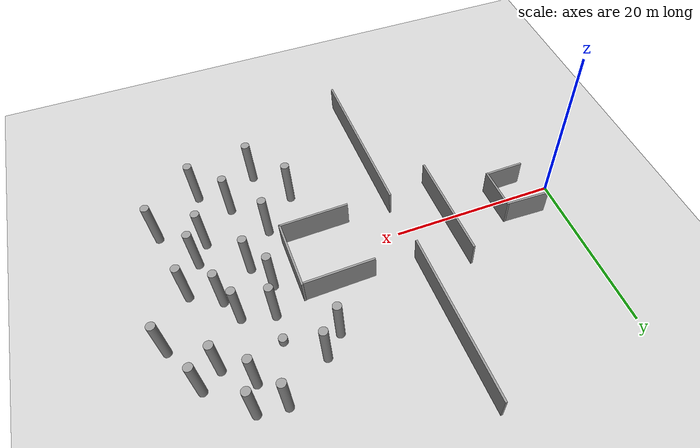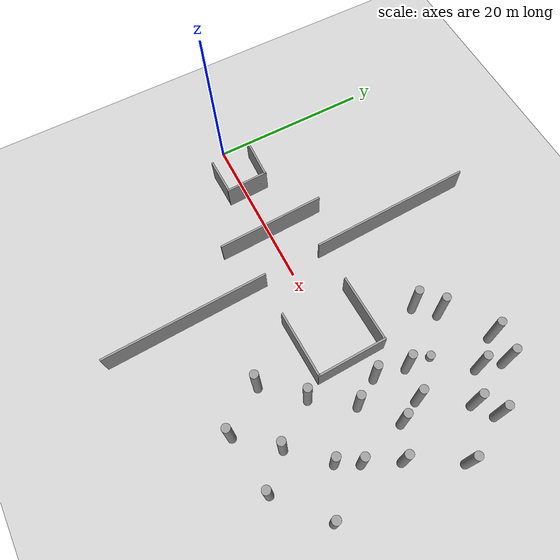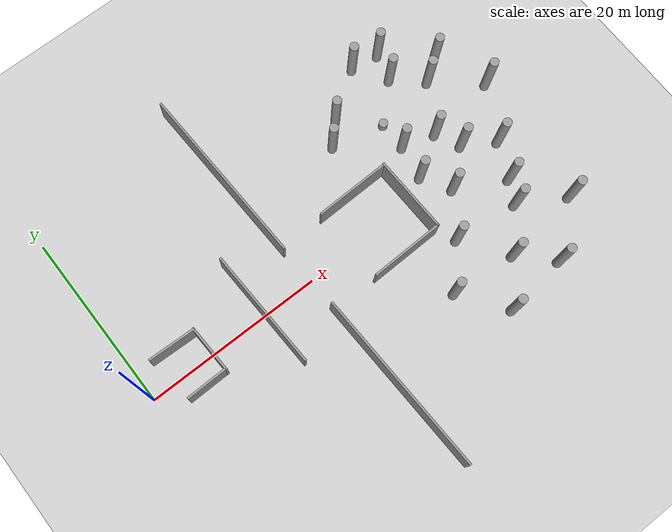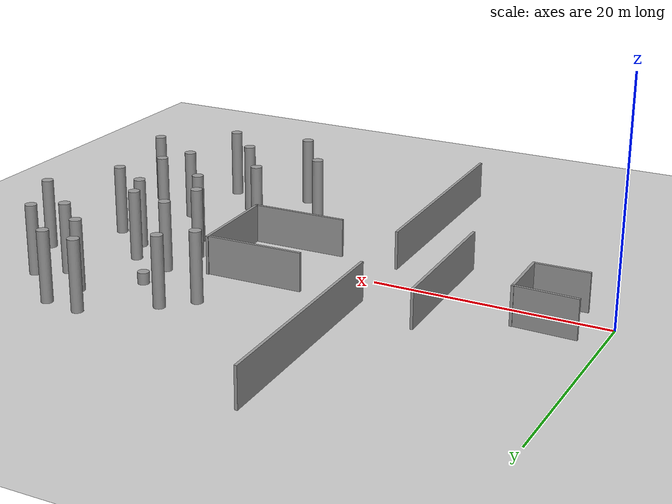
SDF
<sdf version="1.6">
 <world name="default">
  <light name="sun" type="directional">
   <cast_shadows>0</cast_shadows>
   <pose>0 0 10 0 -0 0</pose>
   <diffuse>0.8 0.8 0.8 1</diffuse>
   <specular>0.2 0.2 0.2 1</specular>
   <attenuation>
    <range>1000</range>
    <constant>0.9</constant>
    <linear>0.01</linear>
    <quadratic>0.001</quadratic>
   </attenuation>
   <direction>-0.5 0.1 -0.9</direction>
  </light>
  <model name="ground_plane">
   <static>1</static>
   <link name="link">
    <collision name="collision">
     <geometry><plane><normal>0 0 1</normal><size>200 200</size></plane></geometry>
     <surface><friction><ode><mu>100</mu><mu2>50</mu2></ode></friction></surface>
    </collision>
    <visual name="visual">
     <cast_shadows>0</cast_shadows>
     <geometry><plane><normal>0 0 1</normal><size>200 200</size></plane></geometry>
     <material>
      <script><uri>file://media/materials/scripts/gazebo.material</uri><name>Gazebo/Grey</name></script>
     </material>
    </visual>
    <gravity>0</gravity>
   </link>
  </model>
  <physics name="default_physics" default="0" type="ode">
   <max_step_size>0.001</max_step_size>
   <real_time_factor>1</real_time_factor>
   <real_time_update_rate>1000</real_time_update_rate>
  </physics>
  <scene><ambient>0.4 0.4 0.4 1</ambient><background>0.7 0.7 0.7 1</background><shadows>0</shadows></scene>
  <spherical_coordinates>
   <surface_model>EARTH_WGS84</surface_model>
   <latitude_deg>0</latitude_deg>
   <longitude_deg>0</longitude_deg>
   <elevation>0</elevation>
   <heading_deg>0</heading_deg>
  </spherical_coordinates>
  <gravity>0 0 0</gravity>
  <magnetic_field>6e-06 2.3e-05 -4.2e-05</magnetic_field>
  <atmosphere type="adiabatic"/>
  <model name="unit_box_0_0_clone">
   <pose>4.66061 2.81844 1.66658 0.000226 9e-06 -1.60347</pose>
   <link name="link">
    <inertial>
     <mass>1</mass>
     <inertia>
      <ixx>0.166667</ixx>
      <ixy>0</ixy>
      <ixz>0</ixz>
      <iyy>0.166667</iyy>
      <iyz>0</iyz>
      <izz>0.166667</izz>
     </inertia>
    </inertial>
    <collision name="collision">
     <geometry><box><size>0.237691 5.35848 3.33454</size></box></geometry>
     <surface><contact><collide_without_contact>1</collide_without_contact></contact></surface>
    </collision>
    <visual name="visual">
     <geometry><box><size>0.237691 5.35848 3.33454</size></box></geometry>
     <material>
      <script><name>Gazebo/Grey</name><uri>file://media/materials/scripts/gazebo.material</uri></script>
     </material>
    </visual>
    <gravity>0</gravity>
   </link>
  </model>
  <model name="unit_box_0_0_clone_clone">
   <pose>5.08392 -2.35813 1.66712 6.7e-05 -3e-06 -1.55426</pose>
   <link name="link">
    <inertial>
     <mass>1</mass>
     <inertia>
      <ixx>0.166667</ixx>
      <ixy>0</ixy>
      <ixz>0</ixz>
      <iyy>0.166667</iyy>
      <iyz>0</iyz>
      <izz>0.166667</izz>
     </inertia>
    </inertial>
    <collision name="collision">
     <geometry><box><size>0.237691 4.56821 3.33454</size></box></geometry>
     <surface><contact><collide_without_contact>1</collide_without_contact></contact></surface>
    </collision>
    <visual name="visual">
     <geometry><box><size>0.237691 4.56821 3.33454</size></box></geometry>
     <material>
      <script><name>Gazebo/Grey</name><uri>file://media/materials/scripts/gazebo.material</uri></script>
     </material>
    </visual>
    <gravity>0</gravity>
   </link>
  </model>
  <model name="unit_box_0_0_clone_0">
   <pose>13.856 0.243042 1.66667 -0.000226 9e-06 0.034068</pose>
   <link name="link">
    <inertial>
     <mass>1</mass>
     <inertia>
      <ixx>0.166667</ixx>
      <ixy>0</ixy>
      <ixz>0</ixz>
      <iyy>0.166667</iyy>
      <iyz>0</iyz>
      <izz>0.166667</izz>
     </inertia>
    </inertial>
    <collision name="collision">
     <geometry><box><size>0.237691 13.4329 3.33454</size></box></geometry>
     <surface><contact><collide_without_contact>1</collide_without_contact></contact></surface>
    </collision>
    <visual name="visual">
     <geometry><box><size>0.237691 13.4329 3.33454</size></box></geometry>
     <material>
      <script><name>Gazebo/Grey</name><uri>file://media/materials/scripts/gazebo.material</uri></script>
     </material>
    </visual>
    <gravity>0</gravity>
   </link>
  </model>
  <model name="unit_cylinder_0">
   <pose>36.5123 8.86063 0.499992 0 -0 0</pose>
   <link name="link">
    <inertial>
     <mass>1</mass>
     <inertia><ixx>0.145833</ixx><ixy>0</ixy><ixz>0</ixz><iyy>0.145833</iyy><iyz>0</iyz><izz>0.125</izz></inertia>
    </inertial>
    <collision name="collision">
     <geometry><cylinder><radius>0.5</radius><length>1</length></cylinder></geometry>
     <surface><contact><collide_without_contact>1</collide_without_contact></contact></surface>
    </collision>
    <visual name="visual">
     <geometry><cylinder><radius>0.5</radius><length>1</length></cylinder></geometry>
     <material>
      <script><name>Gazebo/Grey</name><uri>file://media/materials/scripts/gazebo.material</uri></script>
     </material>
    </visual>
    <gravity>0</gravity>
   </link>
  </model>
  <model name="unit_cylinder_0_clone">
   <pose>35.7138 1.81409 3.0167 0 -0 0.001048</pose>
   <link name="link">
    <inertial>
     <mass>1</mass>
     <inertia><ixx>0.145833</ixx><ixy>0</ixy><ixz>0</ixz><iyy>0.145833</iyy><iyz>0</iyz><izz>0.125</izz></inertia>
    </inertial>
    <collision name="collision">
     <geometry><cylinder><radius>0.5</radius><length>6.03342</length></cylinder></geometry>
     <surface><contact><collide_without_contact>1</collide_without_contact></contact></surface>
    </collision>
    <visual name="visual">
     <geometry><cylinder><radius>0.5</radius><length>6.03342</length></cylinder></geometry>
     <material>
      <script><name>Gazebo/Grey</name><uri>file://media/materials/scripts/gazebo.material</uri></script>
     </material>
    </visual>
    <gravity>0</gravity>
   </link>
  </model>
  <model name="unit_cylinder_0_clone_0">
   <pose>34.333 -5.78751 3.0167 0 -0 0.00102</pose>
   <link name="link">
    <inertial>
     <mass>1</mass>
     <inertia><ixx>0.145833</ixx><ixy>0</ixy><ixz>0</ixz><iyy>0.145833</iyy><iyz>0</iyz><izz>0.125</izz></inertia>
    </inertial>
    <collision name="collision">
     <geometry><cylinder><radius>0.5</radius><length>6.03342</length></cylinder></geometry>
     <surface><contact><collide_without_contact>1</collide_without_contact></contact></surface>
    </collision>
    <visual name="visual">
     <geometry><cylinder><radius>0.5</radius><length>6.03342</length></cylinder></geometry>
     <material>
      <script><name>Gazebo/Grey</name><uri>file://media/materials/scripts/gazebo.material</uri></script>
     </material>
    </visual>
    <gravity>0</gravity>
   </link>
  </model>
  <model name="unit_cylinder_0_clone_1">
   <pose>36.4256 5.60163 3.0167 0 -0 0.001071</pose>
   <link name="link">
    <inertial>
     <mass>1</mass>
     <inertia><ixx>0.145833</ixx><ixy>0</ixy><ixz>0</ixz><iyy>0.145833</iyy><iyz>0</iyz><izz>0.125</izz></inertia>
    </inertial>
    <collision name="collision">
     <geometry><cylinder><radius>0.5</radius><length>6.03342</length></cylinder></geometry>
     <surface><contact><collide_without_contact>1</collide_without_contact></contact></surface>
    </collision>
    <visual name="visual">
     <geometry><cylinder><radius>0.5</radius><length>6.03342</length></cylinder></geometry>
     <material>
      <script><name>Gazebo/Grey</name><uri>file://media/materials/scripts/gazebo.material</uri></script>
     </material>
    </visual>
    <gravity>0</gravity>
   </link>
  </model>
  <model name="unit_cylinder_0_clone_2">
   <pose>40.095 4.60307 3.0167 0 -0 0.00102</pose>
   <link name="link">
    <inertial>
     <mass>1</mass>
     <inertia><ixx>0.145833</ixx><ixy>0</ixy><ixz>0</ixz><iyy>0.145833</iyy><iyz>0</iyz><izz>0.125</izz></inertia>
    </inertial>
    <collision name="collision">
     <geometry><cylinder><radius>0.5</radius><length>6.03342</length></cylinder></geometry>
     <surface><contact><collide_without_contact>1</collide_without_contact></contact></surface>
    </collision>
    <visual name="visual">
     <geometry><cylinder><radius>0.5</radius><length>6.03342</length></cylinder></geometry>
     <material>
      <script><name>Gazebo/Grey</name><uri>file://media/materials/scripts/gazebo.material</uri></script>
     </material>
    </visual>
    <gravity>0</gravity>
   </link>
  </model>
  <model name="unit_cylinder_0_clone_3">
   <pose>43.012 -4.07604 3.0167 0 -0 0.001061</pose>
   <link name="link">
    <inertial>
     <mass>1</mass>
     <inertia><ixx>0.145833</ixx><ixy>0</ixy><ixz>0</ixz><iyy>0.145833</iyy><iyz>0</iyz><izz>0.125</izz></inertia>
    </inertial>
    <collision name="collision">
     <geometry><cylinder><radius>0.5</radius><length>6.03342</length></cylinder></geometry>
     <surface><contact><collide_without_contact>1</collide_without_contact></contact></surface>
    </collision>
    <visual name="visual">
     <geometry><cylinder><radius>0.5</radius><length>6.03342</length></cylinder></geometry>
     <material>
      <script><name>Gazebo/Grey</name><uri>file://media/materials/scripts/gazebo.material</uri></script>
     </material>
    </visual>
    <gravity>0</gravity>
   </link>
  </model>
  <model name="unit_cylinder_0_clone_4">
   <pose>44.8772 -0.138691 3.01671 0 -0 0.001001</pose>
   <link name="link">
    <inertial>
     <mass>1</mass>
     <inertia><ixx>0.145833</ixx><ixy>0</ixy><ixz>0</ixz><iyy>0.145833</iyy><iyz>0</iyz><izz>0.125</izz></inertia>
    </inertial>
    <collision name="collision">
     <geometry><cylinder><radius>0.5</radius><length>6.03342</length></cylinder></geometry>
     <surface><contact><collide_without_contact>1</collide_without_contact></contact></surface>
    </collision>
    <visual name="visual">
     <geometry><cylinder><radius>0.5</radius><length>6.03342</length></cylinder></geometry>
     <material>
      <script><name>Gazebo/Grey</name><uri>file://media/materials/scripts/gazebo.material</uri></script>
     </material>
    </visual>
    <gravity>0</gravity>
   </link>
  </model>
  <model name="unit_cylinder_0_clone_5">
   <pose>41.4105 1.88991 3.0167 0 -0 0.000951</pose>
   <link name="link">
    <inertial>
     <mass>1</mass>
     <inertia><ixx>0.145833</ixx><ixy>0</ixy><ixz>0</ixz><iyy>0.145833</iyy><iyz>0</iyz><izz>0.125</izz></inertia>
    </inertial>
    <collision name="collision">
     <geometry><cylinder><radius>0.5</radius><length>6.03342</length></cylinder></geometry>
     <surface><contact><collide_without_contact>1</collide_without_contact></contact></surface>
    </collision>
    <visual name="visual">
     <geometry><cylinder><radius>0.5</radius><length>6.03342</length></cylinder></geometry>
     <material>
      <script><name>Gazebo/Grey</name><uri>file://media/materials/scripts/gazebo.material</uri></script>
     </material>
    </visual>
    <gravity>0</gravity>
   </link>
  </model>
  <model name="unit_cylinder_0_clone_6">
   <pose>41.6643 -6.5691 3.0167 0 -0 0.00102</pose>
   <link name="link">
    <inertial>
     <mass>1</mass>
     <inertia><ixx>0.145833</ixx><ixy>0</ixy><ixz>0</ixz><iyy>0.145833</iyy><iyz>0</iyz><izz>0.125</izz></inertia>
    </inertial>
    <collision name="collision">
     <geometry><cylinder><radius>0.5</radius><length>6.03342</length></cylinder></geometry>
     <surface><contact><collide_without_contact>1</collide_without_contact></contact></surface>
    </collision>
    <visual name="visual">
     <geometry><cylinder><radius>0.5</radius><length>6.03342</length></cylinder></geometry>
     <material>
      <script><name>Gazebo/Grey</name><uri>file://media/materials/scripts/gazebo.material</uri></script>
     </material>
    </visual>
    <gravity>0</gravity>
   </link>
  </model>
  <model name="unit_cylinder_0_clone_7">
   <pose>37.572 -1.32122 3.0167 0 -0 0.001017</pose>
   <link name="link">
    <inertial>
     <mass>1</mass>
     <inertia><ixx>0.145833</ixx><ixy>0</ixy><ixz>0</ixz><iyy>0.145833</iyy><iyz>0</iyz><izz>0.125</izz></inertia>
    </inertial>
    <collision name="collision">
     <geometry><cylinder><radius>0.5</radius><length>6.03342</length></cylinder></geometry>
     <surface><contact><collide_without_contact>1</collide_without_contact></contact></surface>
    </collision>
    <visual name="visual">
     <geometry><cylinder><radius>0.5</radius><length>6.03342</length></cylinder></geometry>
     <material>
      <script><name>Gazebo/Grey</name><uri>file://media/materials/scripts/gazebo.material</uri></script>
     </material>
    </visual>
    <gravity>0</gravity>
   </link>
  </model>
  <model name="unit_cylinder_0_clone_8">
   <pose>45.5641 11.3365 3.0167 0 -0 0.001111</pose>
   <link name="link">
    <inertial>
     <mass>1</mass>
     <inertia><ixx>0.145833</ixx><ixy>0</ixy><ixz>0</ixz><iyy>0.145833</iyy><iyz>0</iyz><izz>0.125</izz></inertia>
    </inertial>
    <collision name="collision">
     <geometry><cylinder><radius>0.5</radius><length>6.03342</length></cylinder></geometry>
     <surface><contact><collide_without_contact>1</collide_without_contact></contact></surface>
    </collision>
    <visual name="visual">
     <geometry><cylinder><radius>0.5</radius><length>6.03342</length></cylinder></geometry>
     <material>
      <script><name>Gazebo/Grey</name><uri>file://media/materials/scripts/gazebo.material</uri></script>
     </material>
    </visual>
    <gravity>0</gravity>
   </link>
  </model>
  <model name="unit_cylinder_0_clone_9">
   <pose>43.3588 9.77114 3.01671 0 -0 0.001025</pose>
   <link name="link">
    <inertial>
     <mass>1</mass>
     <inertia><ixx>0.145833</ixx><ixy>0</ixy><ixz>0</ixz><iyy>0.145833</iyy><iyz>0</iyz><izz>0.125</izz></inertia>
    </inertial>
    <collision name="collision">
     <geometry><cylinder><radius>0.5</radius><length>6.03342</length></cylinder></geometry>
     <surface><contact><collide_without_contact>1</collide_without_contact></contact></surface>
    </collision>
    <visual name="visual">
     <geometry><cylinder><radius>0.5</radius><length>6.03342</length></cylinder></geometry>
     <material>
      <script><name>Gazebo/Grey</name><uri>file://media/materials/scripts/gazebo.material</uri></script>
     </material>
    </visual>
    <gravity>0</gravity>
   </link>
  </model>
  <model name="unit_cylinder_0_clone_10">
   <pose>48.21 5.73589 3.0167 0 -0 0.000963</pose>
   <link name="link">
    <inertial>
     <mass>1</mass>
     <inertia><ixx>0.145833</ixx><ixy>0</ixy><ixz>0</ixz><iyy>0.145833</iyy><iyz>0</iyz><izz>0.125</izz></inertia>
    </inertial>
    <collision name="collision">
     <geometry><cylinder><radius>0.5</radius><length>6.03342</length></cylinder></geometry>
     <surface><contact><collide_without_contact>1</collide_without_contact></contact></surface>
    </collision>
    <visual name="visual">
     <geometry><cylinder><radius>0.5</radius><length>6.03342</length></cylinder></geometry>
     <material>
      <script><name>Gazebo/Grey</name><uri>file://media/materials/scripts/gazebo.material</uri></script>
     </material>
    </visual>
    <gravity>0</gravity>
   </link>
  </model>
  <model name="unit_cylinder_0_clone_11">
   <pose>37.8194 -10.6225 3.0167 0 -0 0.000949</pose>
   <link name="link">
    <inertial>
     <mass>1</mass>
     <inertia><ixx>0.145833</ixx><ixy>0</ixy><ixz>0</ixz><iyy>0.145833</iyy><iyz>0</iyz><izz>0.125</izz></inertia>
    </inertial>
    <collision name="collision">
     <geometry><cylinder><radius>0.5</radius><length>6.03342</length></cylinder></geometry>
     <surface><contact><collide_without_contact>1</collide_without_contact></contact></surface>
    </collision>
    <visual name="visual">
     <geometry><cylinder><radius>0.5</radius><length>6.03342</length></cylinder></geometry>
     <material>
      <script><name>Gazebo/Grey</name><uri>file://media/materials/scripts/gazebo.material</uri></script>
     </material>
    </visual>
    <gravity>0</gravity>
   </link>
  </model>
  <model name="unit_cylinder_0_clone_12">
   <pose>32.6996 12.3147 3.0167 0 -0 0.000949</pose>
   <link name="link">
    <inertial>
     <mass>1</mass>
     <inertia><ixx>0.145833</ixx><ixy>0</ixy><ixz>0</ixz><iyy>0.145833</iyy><iyz>0</iyz><izz>0.125</izz></inertia>
    </inertial>
    <collision name="collision">
     <geometry><cylinder><radius>0.5</radius><length>6.03342</length></cylinder></geometry>
     <surface><contact><collide_without_contact>1</collide_without_contact></contact></surface>
    </collision>
    <visual name="visual">
     <geometry><cylinder><radius>0.5</radius><length>6.03342</length></cylinder></geometry>
     <material>
      <script><name>Gazebo/Grey</name><uri>file://media/materials/scripts/gazebo.material</uri></script>
     </material>
    </visual>
    <gravity>0</gravity>
   </link>
  </model>
  <model name="unit_cylinder_0_clone_13">
   <pose>30.5886 10.1395 3.0167 0 -0 0.000936</pose>
   <link name="link">
    <inertial>
     <mass>1</mass>
     <inertia><ixx>0.145833</ixx><ixy>0</ixy><ixz>0</ixz><iyy>0.145833</iyy><iyz>0</iyz><izz>0.125</izz></inertia>
    </inertial>
    <collision name="collision">
     <geometry><cylinder><radius>0.5</radius><length>6.03342</length></cylinder></geometry>
     <surface><contact><collide_without_contact>1</collide_without_contact></contact></surface>
    </collision>
    <visual name="visual">
     <geometry><cylinder><radius>0.5</radius><length>6.03342</length></cylinder></geometry>
     <material>
      <script><name>Gazebo/Grey</name><uri>file://media/materials/scripts/gazebo.material</uri></script>
     </material>
    </visual>
    <gravity>0</gravity>
   </link>
  </model>
  <model name="unit_cylinder_0_clone_14">
   <pose>30.4731 -9.99792 3.01671 0 -0 0.001073</pose>
   <link name="link">
    <inertial>
     <mass>1</mass>
     <inertia><ixx>0.145833</ixx><ixy>0</ixy><ixz>0</ixz><iyy>0.145833</iyy><iyz>0</iyz><izz>0.125</izz></inertia>
    </inertial>
    <collision name="collision">
     <geometry><cylinder><radius>0.5</radius><length>6.03342</length></cylinder></geometry>
     <surface><contact><collide_without_contact>1</collide_without_contact></contact></surface>
    </collision>
    <visual name="visual">
     <geometry><cylinder><radius>0.5</radius><length>6.03342</length></cylinder></geometry>
     <material>
      <script><name>Gazebo/Grey</name><uri>file://media/materials/scripts/gazebo.material</uri></script>
     </material>
    </visual>
    <gravity>0</gravity>
   </link>
  </model>
  <model name="unit_cylinder_0_clone_15">
   <pose>46.7351 -9.39948 3.01671 0 -0 0.001025</pose>
   <link name="link">
    <inertial>
     <mass>1</mass>
     <inertia><ixx>0.145833</ixx><ixy>0</ixy><ixz>0</ixz><iyy>0.145833</iyy><iyz>0</iyz><izz>0.125</izz></inertia>
    </inertial>
    <collision name="collision">
     <geometry><cylinder><radius>0.5</radius><length>6.03342</length></cylinder></geometry>
     <surface><contact><collide_without_contact>1</collide_without_contact></contact></surface>
    </collision>
    <visual name="visual">
     <geometry><cylinder><radius>0.5</radius><length>6.03342</length></cylinder></geometry>
     <material>
      <script><name>Gazebo/Grey</name><uri>file://media/materials/scripts/gazebo.material</uri></script>
     </material>
    </visual>
    <gravity>0</gravity>
   </link>
  </model>
  <model name="unit_cylinder_0_clone_16">
   <pose>37.8551 15.9705 3.0167 0 -0 0.000998</pose>
   <link name="link">
    <inertial>
     <mass>1</mass>
     <inertia><ixx>0.145833</ixx><ixy>0</ixy><ixz>0</ixz><iyy>0.145833</iyy><iyz>0</iyz><izz>0.125</izz></inertia>
    </inertial>
    <collision name="collision">
     <geometry><cylinder><radius>0.5</radius><length>6.03342</length></cylinder></geometry>
     <surface><contact><collide_without_contact>1</collide_without_contact></contact></surface>
    </collision>
    <visual name="visual">
     <geometry><cylinder><radius>0.5</radius><length>6.03342</length></cylinder></geometry>
     <material>
      <script><name>Gazebo/Grey</name><uri>file://media/materials/scripts/gazebo.material</uri></script>
     </material>
    </visual>
    <gravity>0</gravity>
   </link>
  </model>
  <model name="unit_cylinder_0_clone_17">
   <pose>41.0774 15.5736 3.0167 0 -0 0.001062</pose>
   <link name="link">
    <inertial>
     <mass>1</mass>
     <inertia><ixx>0.145833</ixx><ixy>0</ixy><ixz>0</ixz><iyy>0.145833</iyy><iyz>0</iyz><izz>0.125</izz></inertia>
    </inertial>
    <collision name="collision">
     <geometry><cylinder><radius>0.5</radius><length>6.03342</length></cylinder></geometry>
     <surface><contact><collide_without_contact>1</collide_without_contact></contact></surface>
    </collision>
    <visual name="visual">
     <geometry><cylinder><radius>0.5</radius><length>6.03342</length></cylinder></geometry>
     <material>
      <script><name>Gazebo/Grey</name><uri>file://media/materials/scripts/gazebo.material</uri></script>
     </material>
    </visual>
    <gravity>0</gravity>
   </link>
  </model>
  <model name="unit_cylinder_0_clone_18">
   <pose>34.0571 -14.8992 3.01671 0 -0 0.001025</pose>
   <link name="link">
    <inertial>
     <mass>1</mass>
     <inertia><ixx>0.145833</ixx><ixy>0</ixy><ixz>0</ixz><iyy>0.145833</iyy><iyz>0</iyz><izz>0.125</izz></inertia>
    </inertial>
    <collision name="collision">
     <geometry><cylinder><radius>0.5</radius><length>6.03342</length></cylinder></geometry>
     <surface><contact><collide_without_contact>1</collide_without_contact></contact></surface>
    </collision>
    <visual name="visual">
     <geometry><cylinder><radius>0.5</radius><length>6.03342</length></cylinder></geometry>
     <material>
      <script><name>Gazebo/Grey</name><uri>file://media/materials/scripts/gazebo.material</uri></script>
     </material>
    </visual>
    <gravity>0</gravity>
   </link>
  </model>
  <model name="unit_cylinder_0_clone_19">
   <pose>41.1999 -13.9942 3.0167 0 -0 0.00106</pose>
   <link name="link">
    <inertial>
     <mass>1</mass>
     <inertia><ixx>0.145833</ixx><ixy>0</ixy><ixz>0</ixz><iyy>0.145833</iyy><iyz>0</iyz><izz>0.125</izz></inertia>
    </inertial>
    <collision name="collision">
     <geometry><cylinder><radius>0.5</radius><length>6.03342</length></cylinder></geometry>
     <surface><contact><collide_without_contact>1</collide_without_contact></contact></surface>
    </collision>
    <visual name="visual">
     <geometry><cylinder><radius>0.5</radius><length>6.03342</length></cylinder></geometry>
     <material>
      <script><name>Gazebo/Grey</name><uri>file://media/materials/scripts/gazebo.material</uri></script>
     </material>
    </visual>
    <gravity>0</gravity>
   </link>
  </model>
  <model name="unit_cylinder_0_clone_20">
   <pose>40.2463 12.4856 3.0167 0 -0 0.000949</pose>
   <link name="link">
    <inertial>
     <mass>1</mass>
     <inertia><ixx>0.145833</ixx><ixy>0</ixy><ixz>0</ixz><iyy>0.145833</iyy><iyz>0</iyz><izz>0.125</izz></inertia>
    </inertial>
    <collision name="collision">
     <geometry><cylinder><radius>0.5</radius><length>6.03342</length></cylinder></geometry>
     <surface><contact><collide_without_contact>1</collide_without_contact></contact></surface>
    </collision>
    <visual name="visual">
     <geometry><cylinder><radius>0.5</radius><length>6.03342</length></cylinder></geometry>
     <material>
      <script><name>Gazebo/Grey</name><uri>file://media/materials/scripts/gazebo.material</uri></script>
     </material>
    </visual>
    <gravity>0</gravity>
   </link>
  </model>
  <model name="unit_box_0_0_clone_0_clone_0_clone">
   <pose>33.0465 0.477907 1.65585 -0.002643 6.7e-05 0.02542</pose>
   <link name="link">
    <inertial>
     <mass>1</mass>
     <inertia>
      <ixx>0.166667</ixx>
      <ixy>0</ixy>
      <ixz>0</ixz>
      <iyy>0.166667</iyy>
      <iyz>0</iyz>
      <izz>0.166667</izz>
     </inertia>
    </inertial>
    <collision name="collision">
     <geometry><box><size>0.237691 8.66981 3.33454</size></box></geometry>
     <surface><contact><collide_without_contact>1</collide_without_contact></contact></surface>
    </collision>
    <visual name="visual">
     <geometry><box><size>0.237691 8.66981 3.33454</size></box></geometry>
     <material>
      <script><name>Gazebo/Grey</name><uri>file://media/materials/scripts/gazebo.material</uri></script>
     </material>
    </visual>
    <gravity>0</gravity>
   </link>
  </model>
  <model name="unit_box_0_0_clone_clone_clone_0">
   <pose>28.6414 4.52518 1.65786 0.002259 -6e-05 -1.54452</pose>
   <link name="link">
    <inertial>
     <mass>1</mass>
     <inertia>
      <ixx>0.166667</ixx>
      <ixy>0</ixy>
      <ixz>0</ixz>
      <iyy>0.166667</iyy>
      <iyz>0</iyz>
      <izz>0.166667</izz>
     </inertia>
    </inertial>
    <collision name="collision">
     <geometry><box><size>0.237691 8.358 3.33454</size></box></geometry>
     <surface><contact><collide_without_contact>1</collide_without_contact></contact></surface>
    </collision>
    <visual name="visual">
     <geometry><box><size>0.237691 8.358 3.33454</size></box></geometry>
     <material>
      <script><name>Gazebo/Grey</name><uri>file://media/materials/scripts/gazebo.material</uri></script>
     </material>
    </visual>
    <gravity>0</gravity>
   </link>
  </model>
  <model name="unit_box_0_0_clone_0_clone">
   <pose>18.9776 14.0221 1.66667 -0.000226 9e-06 0.034061</pose>
   <link name="link">
    <inertial>
     <mass>1</mass>
     <inertia>
      <ixx>0.166667</ixx>
      <ixy>0</ixy>
      <ixz>0</ixz>
      <iyy>0.166667</iyy>
      <iyz>0</iyz>
      <izz>0.166667</izz>
     </inertia>
    </inertial>
    <collision name="collision">
     <geometry><box><size>0.237691 20.4927 3.33454</size></box></geometry>
     <surface><contact><collide_without_contact>1</collide_without_contact></contact></surface>
    </collision>
    <visual name="visual">
     <geometry><box><size>0.237691 20.4927 3.33454</size></box></geometry>
     <material>
      <script><name>Gazebo/Grey</name><uri>file://media/materials/scripts/gazebo.material</uri></script>
     </material>
    </visual>
    <gravity>0</gravity>
   </link>
  </model>
  <model name="unit_box_0_0_clone_0_clone_clone">
   <pose>20.034 -13.669 1.66667 -0.000226 9e-06 0.034061</pose>
   <link name="link">
    <inertial>
     <mass>1</mass>
     <inertia>
      <ixx>0.166667</ixx>
      <ixy>0</ixy>
      <ixz>0</ixz>
      <iyy>0.166667</iyy>
      <iyz>0</iyz>
      <izz>0.166667</izz>
     </inertia>
    </inertial>
    <collision name="collision">
     <geometry><box><size>0.237691 20.4927 3.33454</size></box></geometry>
     <surface><contact><collide_without_contact>1</collide_without_contact></contact></surface>
    </collision>
    <visual name="visual">
     <geometry><box><size>0.237691 20.4927 3.33454</size></box></geometry>
     <material>
      <script><name>Gazebo/Grey</name><uri>file://media/materials/scripts/gazebo.material</uri></script>
     </material>
    </visual>
    <gravity>0</gravity>
   </link>
  </model>
  <model name="unit_box_0_0_clone_0_clone_0">
   <pose>7.35282 0.223514 1.66667 -0.000226 9e-06 0.034061</pose>
   <link name="link">
    <inertial>
     <mass>1</mass>
     <inertia>
      <ixx>0.166667</ixx>
      <ixy>0</ixy>
      <ixz>0</ixz>
      <iyy>0.166667</iyy>
      <iyz>0</iyz>
      <izz>0.166667</izz>
     </inertia>
    </inertial>
    <collision name="collision">
     <geometry><box><size>0.237691 5.35848 3.33454</size></box></geometry>
     <surface><contact><collide_without_contact>1</collide_without_contact></contact></surface>
    </collision>
    <visual name="visual">
     <geometry><box><size>0.237691 5.35848 3.33454</size></box></geometry>
     <material>
      <script><name>Gazebo/Grey</name><uri>file://media/materials/scripts/gazebo.material</uri></script>
     </material>
    </visual>
    <gravity>0</gravity>
   </link>
  </model>
  <model name="unit_box_0_0_clone_clone_clone_0_clone">
   <pose>29.0721 -3.86844 1.65786 0.002259 -6e-05 -1.54452</pose>
   <link name="link">
    <inertial>
     <mass>1</mass>
     <inertia>
      <ixx>0.166667</ixx>
      <ixy>0</ixy>
      <ixz>0</ixz>
      <iyy>0.166667</iyy>
      <iyz>0</iyz>
      <izz>0.166667</izz>
     </inertia>
    </inertial>
    <collision name="collision">
     <geometry><box><size>0.237691 8.358 3.33454</size></box></geometry>
     <surface><contact><collide_without_contact>1</collide_without_contact></contact></surface>
    </collision>
    <visual name="visual">
     <geometry><box><size>0.237691 8.358 3.33454</size></box></geometry>
     <material>
      <script><name>Gazebo/Grey</name><uri>file://media/materials/scripts/gazebo.material</uri></script>
     </material>
    </visual>
    <gravity>0</gravity>
   </link>
  </model>
 </world>
</sdf>
